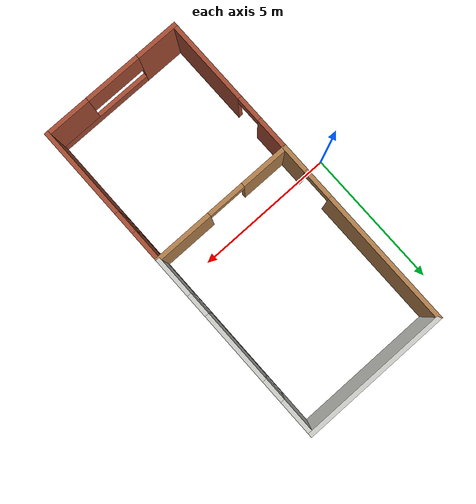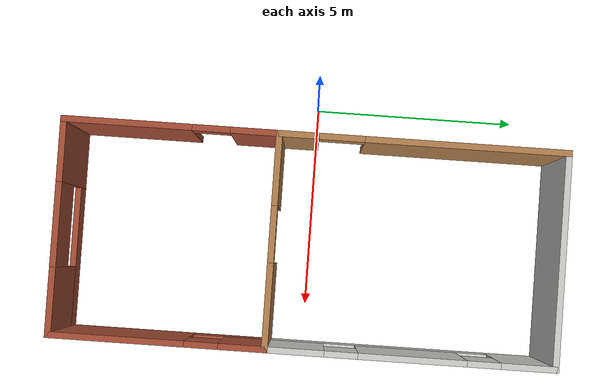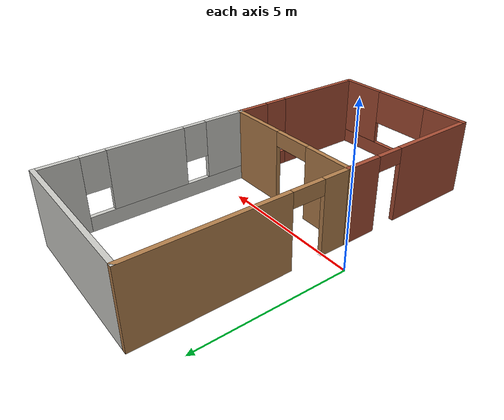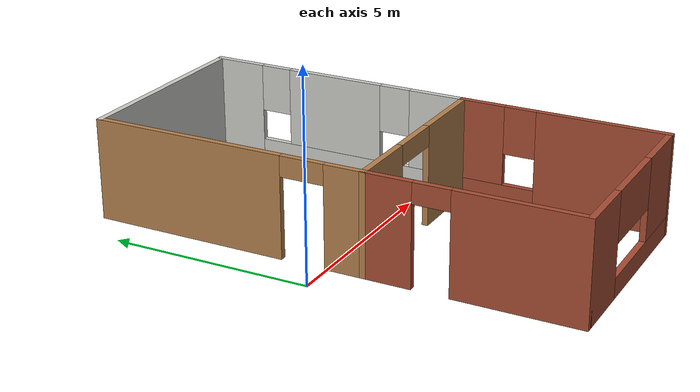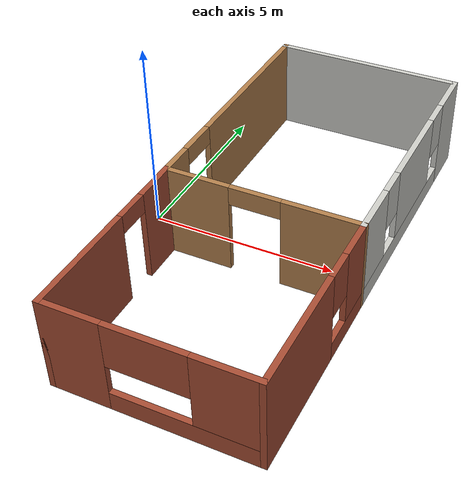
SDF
<sdf version="1.7">
 <model name="basic_house_model">
  <link name="Wall_19">
   <pose>0.95 -3.425 0 0 0 -1.5708</pose>
   <visual name="Wall_19_Visual_0">
    <pose>-2.00386 0 1.25 0 -0 0</pose>
    <geometry><box><size>1.24228 0.15 2.5</size></box></geometry>
    <material>
     <script><uri>file://media/materials/scripts/gazebo.material</uri><name>Gazebo/Bricks</name></script>
     <ambient>1 1 1 1</ambient>
     <shader type="pixel"/>
    </material>
    <meta><layer>0</layer></meta>
   </visual>
   <visual name="Wall_19_Visual_1">
    <pose>1.07114 0 1.25 0 -0 0</pose>
    <geometry><box><size>3.10772 0.15 2.5</size></box></geometry>
    <material>
     <script><uri>file://media/materials/scripts/gazebo.material</uri><name>Gazebo/Bricks</name></script>
     <ambient>1 1 1 1</ambient>
     <shader type="pixel"/>
    </material>
    <meta><layer>0</layer></meta>
   </visual>
   <visual name="Wall_19_Visual_2">
    <pose>-0.932718 0 2.25 0 -0 0</pose>
    <geometry><box><size>0.9 0.15 0.5</size></box></geometry>
    <material>
     <script><uri>file://media/materials/scripts/gazebo.material</uri><name>Gazebo/Bricks</name></script>
     <ambient>1 1 1 1</ambient>
     <shader type="pixel"/>
    </material>
    <meta><layer>0</layer></meta>
   </visual>
   <collision name="Wall_19_Collision_0">
    <pose>-2.00386 0 1.25 0 -0 0</pose>
    <geometry><box><size>1.24228 0.15 2.5</size></box></geometry>
    <surface>
     <friction>
      <ode><mu>1</mu><mu2>1</mu2><fdir1>0 0 0</fdir1><slip1>0</slip1><slip2>0</slip2></ode>
      <torsional>
       <coefficient>1</coefficient>
       <patch_radius>0</patch_radius>
       <surface_radius>0</surface_radius>
       <use_patch_radius>1</use_patch_radius>
       <ode><slip>0</slip></ode>
      </torsional>
     </friction>
     <bounce><restitution_coefficient>0</restitution_coefficient><threshold>1e+06</threshold></bounce>
     <contact>
      <collide_without_contact>0</collide_without_contact>
      <collide_without_contact_bitmask>1</collide_without_contact_bitmask>
      <collide_bitmask>1</collide_bitmask>
      <ode>
       <soft_cfm>0</soft_cfm>
       <soft_erp>0.2</soft_erp>
       <kp>1e+13</kp>
       <kd>1</kd>
       <max_vel>0.01</max_vel>
       <min_depth>0</min_depth>
      </ode>
      <bullet>
       <split_impulse>1</split_impulse>
       <split_impulse_penetration_threshold>-0.01</split_impulse_penetration_threshold>
       <soft_cfm>0</soft_cfm>
       <soft_erp>0.2</soft_erp>
       <kp>1e+13</kp>
       <kd>1</kd>
      </bullet>
     </contact>
    </surface>
   </collision>
   <collision name="Wall_19_Collision_1">
    <pose>1.07114 0 1.25 0 -0 0</pose>
    <geometry><box><size>3.10772 0.15 2.5</size></box></geometry>
    <surface>
     <friction>
      <ode><mu>1</mu><mu2>1</mu2><fdir1>0 0 0</fdir1><slip1>0</slip1><slip2>0</slip2></ode>
      <torsional>
       <coefficient>1</coefficient>
       <patch_radius>0</patch_radius>
       <surface_radius>0</surface_radius>
       <use_patch_radius>1</use_patch_radius>
       <ode><slip>0</slip></ode>
      </torsional>
     </friction>
     <bounce><restitution_coefficient>0</restitution_coefficient><threshold>1e+06</threshold></bounce>
     <contact>
      <collide_without_contact>0</collide_without_contact>
      <collide_without_contact_bitmask>1</collide_without_contact_bitmask>
      <collide_bitmask>1</collide_bitmask>
      <ode>
       <soft_cfm>0</soft_cfm>
       <soft_erp>0.2</soft_erp>
       <kp>1e+13</kp>
       <kd>1</kd>
       <max_vel>0.01</max_vel>
       <min_depth>0</min_depth>
      </ode>
      <bullet>
       <split_impulse>1</split_impulse>
       <split_impulse_penetration_threshold>-0.01</split_impulse_penetration_threshold>
       <soft_cfm>0</soft_cfm>
       <soft_erp>0.2</soft_erp>
       <kp>1e+13</kp>
       <kd>1</kd>
      </bullet>
     </contact>
    </surface>
   </collision>
   <collision name="Wall_19_Collision_2">
    <pose>-0.932718 0 2.25 0 -0 0</pose>
    <geometry><box><size>0.9 0.15 0.5</size></box></geometry>
    <surface>
     <friction>
      <ode><mu>1</mu><mu2>1</mu2><fdir1>0 0 0</fdir1><slip1>0</slip1><slip2>0</slip2></ode>
      <torsional>
       <coefficient>1</coefficient>
       <patch_radius>0</patch_radius>
       <surface_radius>0</surface_radius>
       <use_patch_radius>1</use_patch_radius>
       <ode><slip>0</slip></ode>
      </torsional>
     </friction>
     <bounce><restitution_coefficient>0</restitution_coefficient><threshold>1e+06</threshold></bounce>
     <contact>
      <collide_without_contact>0</collide_without_contact>
      <collide_without_contact_bitmask>1</collide_without_contact_bitmask>
      <collide_bitmask>1</collide_bitmask>
      <ode>
       <soft_cfm>0</soft_cfm>
       <soft_erp>0.2</soft_erp>
       <kp>1e+13</kp>
       <kd>1</kd>
       <max_vel>0.01</max_vel>
       <min_depth>0</min_depth>
      </ode>
      <bullet>
       <split_impulse>1</split_impulse>
       <split_impulse_penetration_threshold>-0.01</split_impulse_penetration_threshold>
       <soft_cfm>0</soft_cfm>
       <soft_erp>0.2</soft_erp>
       <kp>1e+13</kp>
       <kd>1</kd>
      </bullet>
     </contact>
    </surface>
   </collision>
  </link>
  <link name="Wall_20">
   <pose>3.5 -5.975 0 0 -0 0</pose>
   <visual name="Wall_20_Visual_0">
    <pose>-1.83971 0 1.25 0 -0 0</pose>
    <geometry><box><size>1.57058 0.15 2.5</size></box></geometry>
    <material>
     <script><uri>file://media/materials/scripts/gazebo.material</uri><name>Gazebo/Bricks</name></script>
     <ambient>1 1 1 1</ambient>
     <shader type="pixel"/>
    </material>
    <meta><layer>0</layer></meta>
   </visual>
   <visual name="Wall_20_Visual_1">
    <pose>0.785288 0 0.25 0 -0 0</pose>
    <geometry><box><size>3.67943 0.15 0.5</size></box></geometry>
    <material>
     <script><uri>file://media/materials/scripts/gazebo.material</uri><name>Gazebo/Bricks</name></script>
     <ambient>1 1 1 1</ambient>
     <shader type="pixel"/>
    </material>
    <meta><layer>0</layer></meta>
   </visual>
   <visual name="Wall_20_Visual_2">
    <pose>1.79171 0 1.5 0 -0 0</pose>
    <geometry><box><size>1.66657 0.15 2</size></box></geometry>
    <material>
     <script><uri>file://media/materials/scripts/gazebo.material</uri><name>Gazebo/Bricks</name></script>
     <ambient>1 1 1 1</ambient>
     <shader type="pixel"/>
    </material>
    <meta><layer>0</layer></meta>
   </visual>
   <visual name="Wall_20_Visual_3">
    <pose>-0.047998 0 1.9 0 -0 0</pose>
    <geometry><box><size>2.01285 0.15 1.2</size></box></geometry>
    <material>
     <script><uri>file://media/materials/scripts/gazebo.material</uri><name>Gazebo/Bricks</name></script>
     <ambient>1 1 1 1</ambient>
     <shader type="pixel"/>
    </material>
    <meta><layer>0</layer></meta>
   </visual>
   <collision name="Wall_20_Collision_0">
    <pose>-1.83971 0 1.25 0 -0 0</pose>
    <geometry><box><size>1.57058 0.15 2.5</size></box></geometry>
    <surface>
     <friction>
      <ode><mu>1</mu><mu2>1</mu2><fdir1>0 0 0</fdir1><slip1>0</slip1><slip2>0</slip2></ode>
      <torsional>
       <coefficient>1</coefficient>
       <patch_radius>0</patch_radius>
       <surface_radius>0</surface_radius>
       <use_patch_radius>1</use_patch_radius>
       <ode><slip>0</slip></ode>
      </torsional>
     </friction>
     <bounce><restitution_coefficient>0</restitution_coefficient><threshold>1e+06</threshold></bounce>
     <contact>
      <collide_without_contact>0</collide_without_contact>
      <collide_without_contact_bitmask>1</collide_without_contact_bitmask>
      <collide_bitmask>1</collide_bitmask>
      <ode>
       <soft_cfm>0</soft_cfm>
       <soft_erp>0.2</soft_erp>
       <kp>1e+13</kp>
       <kd>1</kd>
       <max_vel>0.01</max_vel>
       <min_depth>0</min_depth>
      </ode>
      <bullet>
       <split_impulse>1</split_impulse>
       <split_impulse_penetration_threshold>-0.01</split_impulse_penetration_threshold>
       <soft_cfm>0</soft_cfm>
       <soft_erp>0.2</soft_erp>
       <kp>1e+13</kp>
       <kd>1</kd>
      </bullet>
     </contact>
    </surface>
   </collision>
   <collision name="Wall_20_Collision_2">
    <pose>1.79171 0 1.5 0 -0 0</pose>
    <geometry><box><size>1.66657 0.15 2</size></box></geometry>
    <surface>
     <friction>
      <ode><mu>1</mu><mu2>1</mu2><fdir1>0 0 0</fdir1><slip1>0</slip1><slip2>0</slip2></ode>
      <torsional>
       <coefficient>1</coefficient>
       <patch_radius>0</patch_radius>
       <surface_radius>0</surface_radius>
       <use_patch_radius>1</use_patch_radius>
       <ode><slip>0</slip></ode>
      </torsional>
     </friction>
     <bounce><restitution_coefficient>0</restitution_coefficient><threshold>1e+06</threshold></bounce>
     <contact>
      <collide_without_contact>0</collide_without_contact>
      <collide_without_contact_bitmask>1</collide_without_contact_bitmask>
      <collide_bitmask>1</collide_bitmask>
      <ode>
       <soft_cfm>0</soft_cfm>
       <soft_erp>0.2</soft_erp>
       <kp>1e+13</kp>
       <kd>1</kd>
       <max_vel>0.01</max_vel>
       <min_depth>0</min_depth>
      </ode>
      <bullet>
       <split_impulse>1</split_impulse>
       <split_impulse_penetration_threshold>-0.01</split_impulse_penetration_threshold>
       <soft_cfm>0</soft_cfm>
       <soft_erp>0.2</soft_erp>
       <kp>1e+13</kp>
       <kd>1</kd>
      </bullet>
     </contact>
    </surface>
   </collision>
   <collision name="Wall_20_Collision_1">
    <pose>0.785288 0 0.25 0 -0 0</pose>
    <geometry><box><size>3.67943 0.15 0.5</size></box></geometry>
    <surface>
     <friction>
      <ode><mu>1</mu><mu2>1</mu2><fdir1>0 0 0</fdir1><slip1>0</slip1><slip2>0</slip2></ode>
      <torsional>
       <coefficient>1</coefficient>
       <patch_radius>0</patch_radius>
       <surface_radius>0</surface_radius>
       <use_patch_radius>1</use_patch_radius>
       <ode><slip>0</slip></ode>
      </torsional>
     </friction>
     <bounce><restitution_coefficient>0</restitution_coefficient><threshold>1e+06</threshold></bounce>
     <contact>
      <collide_without_contact>0</collide_without_contact>
      <collide_without_contact_bitmask>1</collide_without_contact_bitmask>
      <collide_bitmask>1</collide_bitmask>
      <ode>
       <soft_cfm>0</soft_cfm>
       <soft_erp>0.2</soft_erp>
       <kp>1e+13</kp>
       <kd>1</kd>
       <max_vel>0.01</max_vel>
       <min_depth>0</min_depth>
      </ode>
      <bullet>
       <split_impulse>1</split_impulse>
       <split_impulse_penetration_threshold>-0.01</split_impulse_penetration_threshold>
       <soft_cfm>0</soft_cfm>
       <soft_erp>0.2</soft_erp>
       <kp>1e+13</kp>
       <kd>1</kd>
      </bullet>
     </contact>
    </surface>
   </collision>
   <collision name="Wall_20_Collision_3">
    <pose>-0.047998 0 1.9 0 -0 0</pose>
    <geometry><box><size>2.01285 0.15 1.2</size></box></geometry>
    <surface>
     <friction>
      <ode><mu>1</mu><mu2>1</mu2><fdir1>0 0 0</fdir1><slip1>0</slip1><slip2>0</slip2></ode>
      <torsional>
       <coefficient>1</coefficient>
       <patch_radius>0</patch_radius>
       <surface_radius>0</surface_radius>
       <use_patch_radius>1</use_patch_radius>
       <ode><slip>0</slip></ode>
      </torsional>
     </friction>
     <bounce><restitution_coefficient>0</restitution_coefficient><threshold>1e+06</threshold></bounce>
     <contact>
      <collide_without_contact>0</collide_without_contact>
      <collide_without_contact_bitmask>1</collide_without_contact_bitmask>
      <collide_bitmask>1</collide_bitmask>
      <ode>
       <soft_cfm>0</soft_cfm>
       <soft_erp>0.2</soft_erp>
       <kp>1e+13</kp>
       <kd>1</kd>
       <max_vel>0.01</max_vel>
       <min_depth>0</min_depth>
      </ode>
      <bullet>
       <split_impulse>1</split_impulse>
       <split_impulse_penetration_threshold>-0.01</split_impulse_penetration_threshold>
       <soft_cfm>0</soft_cfm>
       <soft_erp>0.2</soft_erp>
       <kp>1e+13</kp>
       <kd>1</kd>
      </bullet>
     </contact>
    </surface>
   </collision>
  </link>
  <link name="Wall_21">
   <pose>6.05 -3.425 0 0 -0 1.5708</pose>
   <visual name="Wall_21_Visual_0">
    <pose>-0.987562 0 1.25 0 -0 0</pose>
    <geometry><box><size>3.27488 0.15 2.5</size></box></geometry>
    <material>
     <script><uri>file://media/materials/scripts/gazebo.material</uri><name>Gazebo/Bricks</name></script>
     <ambient>1 1 1 1</ambient>
     <shader type="pixel"/>
    </material>
    <meta><layer>0</layer></meta>
   </visual>
   <visual name="Wall_21_Visual_1">
    <pose>1.63744 0 0.25 0 -0 0</pose>
    <geometry><box><size>1.97512 0.15 0.5</size></box></geometry>
    <material>
     <script><uri>file://media/materials/scripts/gazebo.material</uri><name>Gazebo/Bricks</name></script>
     <ambient>1 1 1 1</ambient>
     <shader type="pixel"/>
    </material>
    <meta><layer>0</layer></meta>
   </visual>
   <visual name="Wall_21_Visual_2">
    <pose>2.03744 0 1.5 0 -0 0</pose>
    <geometry><box><size>1.17512 0.15 2</size></box></geometry>
    <material>
     <script><uri>file://media/materials/scripts/gazebo.material</uri><name>Gazebo/Bricks</name></script>
     <ambient>1 1 1 1</ambient>
     <shader type="pixel"/>
    </material>
    <meta><layer>0</layer></meta>
   </visual>
   <visual name="Wall_21_Visual_3">
    <pose>1.04988 0 1.9 0 -0 0</pose>
    <geometry><box><size>0.8 0.15 1.2</size></box></geometry>
    <material>
     <script><uri>file://media/materials/scripts/gazebo.material</uri><name>Gazebo/Bricks</name></script>
     <ambient>1 1 1 1</ambient>
     <shader type="pixel"/>
    </material>
    <meta><layer>0</layer></meta>
   </visual>
   <collision name="Wall_21_Collision_3">
    <pose>1.04988 0 1.9 0 -0 0</pose>
    <geometry><box><size>0.8 0.15 1.2</size></box></geometry>
    <surface>
     <friction>
      <ode><mu>1</mu><mu2>1</mu2><fdir1>0 0 0</fdir1><slip1>0</slip1><slip2>0</slip2></ode>
      <torsional>
       <coefficient>1</coefficient>
       <patch_radius>0</patch_radius>
       <surface_radius>0</surface_radius>
       <use_patch_radius>1</use_patch_radius>
       <ode><slip>0</slip></ode>
      </torsional>
     </friction>
     <bounce><restitution_coefficient>0</restitution_coefficient><threshold>1e+06</threshold></bounce>
     <contact>
      <collide_without_contact>0</collide_without_contact>
      <collide_without_contact_bitmask>1</collide_without_contact_bitmask>
      <collide_bitmask>1</collide_bitmask>
      <ode>
       <soft_cfm>0</soft_cfm>
       <soft_erp>0.2</soft_erp>
       <kp>1e+13</kp>
       <kd>1</kd>
       <max_vel>0.01</max_vel>
       <min_depth>0</min_depth>
      </ode>
      <bullet>
       <split_impulse>1</split_impulse>
       <split_impulse_penetration_threshold>-0.01</split_impulse_penetration_threshold>
       <soft_cfm>0</soft_cfm>
       <soft_erp>0.2</soft_erp>
       <kp>1e+13</kp>
       <kd>1</kd>
      </bullet>
     </contact>
    </surface>
   </collision>
   <collision name="Wall_21_Collision_0">
    <pose>-0.987562 0 1.25 0 -0 0</pose>
    <geometry><box><size>3.27488 0.15 2.5</size></box></geometry>
    <surface>
     <friction>
      <ode><mu>1</mu><mu2>1</mu2><fdir1>0 0 0</fdir1><slip1>0</slip1><slip2>0</slip2></ode>
      <torsional>
       <coefficient>1</coefficient>
       <patch_radius>0</patch_radius>
       <surface_radius>0</surface_radius>
       <use_patch_radius>1</use_patch_radius>
       <ode><slip>0</slip></ode>
      </torsional>
     </friction>
     <bounce><restitution_coefficient>0</restitution_coefficient><threshold>1e+06</threshold></bounce>
     <contact>
      <collide_without_contact>0</collide_without_contact>
      <collide_without_contact_bitmask>1</collide_without_contact_bitmask>
      <collide_bitmask>1</collide_bitmask>
      <ode>
       <soft_cfm>0</soft_cfm>
       <soft_erp>0.2</soft_erp>
       <kp>1e+13</kp>
       <kd>1</kd>
       <max_vel>0.01</max_vel>
       <min_depth>0</min_depth>
      </ode>
      <bullet>
       <split_impulse>1</split_impulse>
       <split_impulse_penetration_threshold>-0.01</split_impulse_penetration_threshold>
       <soft_cfm>0</soft_cfm>
       <soft_erp>0.2</soft_erp>
       <kp>1e+13</kp>
       <kd>1</kd>
      </bullet>
     </contact>
    </surface>
   </collision>
   <collision name="Wall_21_Collision_1">
    <pose>1.63744 0 0.25 0 -0 0</pose>
    <geometry><box><size>1.97512 0.15 0.5</size></box></geometry>
    <surface>
     <friction>
      <ode><mu>1</mu><mu2>1</mu2><fdir1>0 0 0</fdir1><slip1>0</slip1><slip2>0</slip2></ode>
      <torsional>
       <coefficient>1</coefficient>
       <patch_radius>0</patch_radius>
       <surface_radius>0</surface_radius>
       <use_patch_radius>1</use_patch_radius>
       <ode><slip>0</slip></ode>
      </torsional>
     </friction>
     <bounce><restitution_coefficient>0</restitution_coefficient><threshold>1e+06</threshold></bounce>
     <contact>
      <collide_without_contact>0</collide_without_contact>
      <collide_without_contact_bitmask>1</collide_without_contact_bitmask>
      <collide_bitmask>1</collide_bitmask>
      <ode>
       <soft_cfm>0</soft_cfm>
       <soft_erp>0.2</soft_erp>
       <kp>1e+13</kp>
       <kd>1</kd>
       <max_vel>0.01</max_vel>
       <min_depth>0</min_depth>
      </ode>
      <bullet>
       <split_impulse>1</split_impulse>
       <split_impulse_penetration_threshold>-0.01</split_impulse_penetration_threshold>
       <soft_cfm>0</soft_cfm>
       <soft_erp>0.2</soft_erp>
       <kp>1e+13</kp>
       <kd>1</kd>
      </bullet>
     </contact>
    </surface>
   </collision>
   <collision name="Wall_21_Collision_2">
    <pose>2.03744 0 1.5 0 -0 0</pose>
    <geometry><box><size>1.17512 0.15 2</size></box></geometry>
    <surface>
     <friction>
      <ode><mu>1</mu><mu2>1</mu2><fdir1>0 0 0</fdir1><slip1>0</slip1><slip2>0</slip2></ode>
      <torsional>
       <coefficient>1</coefficient>
       <patch_radius>0</patch_radius>
       <surface_radius>0</surface_radius>
       <use_patch_radius>1</use_patch_radius>
       <ode><slip>0</slip></ode>
      </torsional>
     </friction>
     <bounce><restitution_coefficient>0</restitution_coefficient><threshold>1e+06</threshold></bounce>
     <contact>
      <collide_without_contact>0</collide_without_contact>
      <collide_without_contact_bitmask>1</collide_without_contact_bitmask>
      <collide_bitmask>1</collide_bitmask>
      <ode>
       <soft_cfm>0</soft_cfm>
       <soft_erp>0.2</soft_erp>
       <kp>1e+13</kp>
       <kd>1</kd>
       <max_vel>0.01</max_vel>
       <min_depth>0</min_depth>
      </ode>
      <bullet>
       <split_impulse>1</split_impulse>
       <split_impulse_penetration_threshold>-0.01</split_impulse_penetration_threshold>
       <soft_cfm>0</soft_cfm>
       <soft_erp>0.2</soft_erp>
       <kp>1e+13</kp>
       <kd>1</kd>
      </bullet>
     </contact>
    </surface>
   </collision>
  </link>
  <link name="Wall_27">
   <pose>3.5 5.975 0 0 -0 0</pose>
   <visual name="Wall_27_Visual">
    <pose>0 0 1.25 0 -0 0</pose>
    <geometry><box><size>5.25 0.15 2.5</size></box></geometry>
    <material>
     <script><uri>file://media/materials/scripts/gazebo.material</uri><name>Gazebo/CeilingTiled</name></script>
     <ambient>1 1 1 1</ambient>
     <shader type="pixel"/>
    </material>
    <meta><layer>0</layer></meta>
   </visual>
   <collision name="Wall_27_Collision">
    <pose>0 0 1.25 0 -0 0</pose>
    <geometry><box><size>5.25 0.15 2.5</size></box></geometry>
    <surface>
     <friction>
      <ode><mu>1</mu><mu2>1</mu2><fdir1>0 0 0</fdir1><slip1>0</slip1><slip2>0</slip2></ode>
      <torsional>
       <coefficient>1</coefficient>
       <patch_radius>0</patch_radius>
       <surface_radius>0</surface_radius>
       <use_patch_radius>1</use_patch_radius>
       <ode><slip>0</slip></ode>
      </torsional>
     </friction>
     <bounce><restitution_coefficient>0</restitution_coefficient><threshold>1e+06</threshold></bounce>
     <contact>
      <collide_without_contact>0</collide_without_contact>
      <collide_without_contact_bitmask>1</collide_without_contact_bitmask>
      <collide_bitmask>1</collide_bitmask>
      <ode>
       <soft_cfm>0</soft_cfm>
       <soft_erp>0.2</soft_erp>
       <kp>1e+13</kp>
       <kd>1</kd>
       <max_vel>0.01</max_vel>
       <min_depth>0</min_depth>
      </ode>
      <bullet>
       <split_impulse>1</split_impulse>
       <split_impulse_penetration_threshold>-0.01</split_impulse_penetration_threshold>
       <soft_cfm>0</soft_cfm>
       <soft_erp>0.2</soft_erp>
       <kp>1e+13</kp>
       <kd>1</kd>
      </bullet>
     </contact>
    </surface>
   </collision>
  </link>
  <link name="Wall_6">
   <pose>6.05 2.55 0 0 0 -1.5708</pose>
   <visual name="Wall_6_Visual_0">
    <pose>-2.82309 0 1.25 0 -0 0</pose>
    <geometry><box><size>1.35381 0.15 2.5</size></box></geometry>
    <material>
     <script><uri>file://media/materials/scripts/gazebo.material</uri><name>Gazebo/CeilingTiled</name></script>
     <ambient>1 1 1 1</ambient>
     <shader type="pixel"/>
    </material>
    <meta><layer>0</layer></meta>
   </visual>
   <visual name="Wall_6_Visual_1">
    <pose>0.676907 0 0.25 0 -0 0</pose>
    <geometry><box><size>5.64619 0.15 0.5</size></box></geometry>
    <material>
     <script><uri>file://media/materials/scripts/gazebo.material</uri><name>Gazebo/CeilingTiled</name></script>
     <ambient>1 1 1 1</ambient>
     <shader type="pixel"/>
    </material>
    <meta><layer>0</layer></meta>
   </visual>
   <visual name="Wall_6_Visual_2">
    <pose>-0.061529 0 1.5 0 -0 0</pose>
    <geometry><box><size>2.56931 0.15 2</size></box></geometry>
    <material>
     <script><uri>file://media/materials/scripts/gazebo.material</uri><name>Gazebo/CeilingTiled</name></script>
     <ambient>1 1 1 1</ambient>
     <shader type="pixel"/>
    </material>
    <meta><layer>0</layer></meta>
   </visual>
   <visual name="Wall_6_Visual_3">
    <pose>2.76156 0 1.5 0 -0 0</pose>
    <geometry><box><size>1.47687 0.15 2</size></box></geometry>
    <material>
     <script><uri>file://media/materials/scripts/gazebo.material</uri><name>Gazebo/CeilingTiled</name></script>
     <ambient>1 1 1 1</ambient>
     <shader type="pixel"/>
    </material>
    <meta><layer>0</layer></meta>
   </visual>
   <visual name="Wall_6_Visual_4">
    <pose>-1.74619 0 1.9 0 -0 0</pose>
    <geometry><box><size>0.8 0.15 1.2</size></box></geometry>
    <material>
     <script><uri>file://media/materials/scripts/gazebo.material</uri><name>Gazebo/CeilingTiled</name></script>
     <ambient>1 1 1 1</ambient>
     <shader type="pixel"/>
    </material>
    <meta><layer>0</layer></meta>
   </visual>
   <visual name="Wall_6_Visual_5">
    <pose>1.62313 0 1.9 0 -0 0</pose>
    <geometry><box><size>0.8 0.15 1.2</size></box></geometry>
    <material>
     <script><uri>file://media/materials/scripts/gazebo.material</uri><name>Gazebo/CeilingTiled</name></script>
     <ambient>1 1 1 1</ambient>
     <shader type="pixel"/>
    </material>
    <meta><layer>0</layer></meta>
   </visual>
   <collision name="Wall_6_Collision_0">
    <pose>-2.82309 0 1.25 0 -0 0</pose>
    <geometry><box><size>1.35381 0.15 2.5</size></box></geometry>
    <surface>
     <friction>
      <ode><mu>1</mu><mu2>1</mu2><fdir1>0 0 0</fdir1><slip1>0</slip1><slip2>0</slip2></ode>
      <torsional>
       <coefficient>1</coefficient>
       <patch_radius>0</patch_radius>
       <surface_radius>0</surface_radius>
       <use_patch_radius>1</use_patch_radius>
       <ode><slip>0</slip></ode>
      </torsional>
     </friction>
     <bounce><restitution_coefficient>0</restitution_coefficient><threshold>1e+06</threshold></bounce>
     <contact>
      <collide_without_contact>0</collide_without_contact>
      <collide_without_contact_bitmask>1</collide_without_contact_bitmask>
      <collide_bitmask>1</collide_bitmask>
      <ode>
       <soft_cfm>0</soft_cfm>
       <soft_erp>0.2</soft_erp>
       <kp>1e+13</kp>
       <kd>1</kd>
       <max_vel>0.01</max_vel>
       <min_depth>0</min_depth>
      </ode>
      <bullet>
       <split_impulse>1</split_impulse>
       <split_impulse_penetration_threshold>-0.01</split_impulse_penetration_threshold>
       <soft_cfm>0</soft_cfm>
       <soft_erp>0.2</soft_erp>
       <kp>1e+13</kp>
       <kd>1</kd>
      </bullet>
     </contact>
    </surface>
   </collision>
   <collision name="Wall_6_Collision_1">
    <pose>0.676907 0 0.25 0 -0 0</pose>
    <geometry><box><size>5.64619 0.15 0.5</size></box></geometry>
    <surface>
     <friction>
      <ode><mu>1</mu><mu2>1</mu2><fdir1>0 0 0</fdir1><slip1>0</slip1><slip2>0</slip2></ode>
      <torsional>
       <coefficient>1</coefficient>
       <patch_radius>0</patch_radius>
       <surface_radius>0</surface_radius>
       <use_patch_radius>1</use_patch_radius>
       <ode><slip>0</slip></ode>
      </torsional>
     </friction>
     <bounce><restitution_coefficient>0</restitution_coefficient><threshold>1e+06</threshold></bounce>
     <contact>
      <collide_without_contact>0</collide_without_contact>
      <collide_without_contact_bitmask>1</collide_without_contact_bitmask>
      <collide_bitmask>1</collide_bitmask>
      <ode>
       <soft_cfm>0</soft_cfm>
       <soft_erp>0.2</soft_erp>
       <kp>1e+13</kp>
       <kd>1</kd>
       <max_vel>0.01</max_vel>
       <min_depth>0</min_depth>
      </ode>
      <bullet>
       <split_impulse>1</split_impulse>
       <split_impulse_penetration_threshold>-0.01</split_impulse_penetration_threshold>
       <soft_cfm>0</soft_cfm>
       <soft_erp>0.2</soft_erp>
       <kp>1e+13</kp>
       <kd>1</kd>
      </bullet>
     </contact>
    </surface>
   </collision>
   <collision name="Wall_6_Collision_2">
    <pose>-0.061529 0 1.5 0 -0 0</pose>
    <geometry><box><size>2.56931 0.15 2</size></box></geometry>
    <surface>
     <friction>
      <ode><mu>1</mu><mu2>1</mu2><fdir1>0 0 0</fdir1><slip1>0</slip1><slip2>0</slip2></ode>
      <torsional>
       <coefficient>1</coefficient>
       <patch_radius>0</patch_radius>
       <surface_radius>0</surface_radius>
       <use_patch_radius>1</use_patch_radius>
       <ode><slip>0</slip></ode>
      </torsional>
     </friction>
     <bounce><restitution_coefficient>0</restitution_coefficient><threshold>1e+06</threshold></bounce>
     <contact>
      <collide_without_contact>0</collide_without_contact>
      <collide_without_contact_bitmask>1</collide_without_contact_bitmask>
      <collide_bitmask>1</collide_bitmask>
      <ode>
       <soft_cfm>0</soft_cfm>
       <soft_erp>0.2</soft_erp>
       <kp>1e+13</kp>
       <kd>1</kd>
       <max_vel>0.01</max_vel>
       <min_depth>0</min_depth>
      </ode>
      <bullet>
       <split_impulse>1</split_impulse>
       <split_impulse_penetration_threshold>-0.01</split_impulse_penetration_threshold>
       <soft_cfm>0</soft_cfm>
       <soft_erp>0.2</soft_erp>
       <kp>1e+13</kp>
       <kd>1</kd>
      </bullet>
     </contact>
    </surface>
   </collision>
   <collision name="Wall_6_Collision_4">
    <pose>-1.74619 0 1.9 0 -0 0</pose>
    <geometry><box><size>0.8 0.15 1.2</size></box></geometry>
    <surface>
     <friction>
      <ode><mu>1</mu><mu2>1</mu2><fdir1>0 0 0</fdir1><slip1>0</slip1><slip2>0</slip2></ode>
      <torsional>
       <coefficient>1</coefficient>
       <patch_radius>0</patch_radius>
       <surface_radius>0</surface_radius>
       <use_patch_radius>1</use_patch_radius>
       <ode><slip>0</slip></ode>
      </torsional>
     </friction>
     <bounce><restitution_coefficient>0</restitution_coefficient><threshold>1e+06</threshold></bounce>
     <contact>
      <collide_without_contact>0</collide_without_contact>
      <collide_without_contact_bitmask>1</collide_without_contact_bitmask>
      <collide_bitmask>1</collide_bitmask>
      <ode>
       <soft_cfm>0</soft_cfm>
       <soft_erp>0.2</soft_erp>
       <kp>1e+13</kp>
       <kd>1</kd>
       <max_vel>0.01</max_vel>
       <min_depth>0</min_depth>
      </ode>
      <bullet>
       <split_impulse>1</split_impulse>
       <split_impulse_penetration_threshold>-0.01</split_impulse_penetration_threshold>
       <soft_cfm>0</soft_cfm>
       <soft_erp>0.2</soft_erp>
       <kp>1e+13</kp>
       <kd>1</kd>
      </bullet>
     </contact>
    </surface>
   </collision>
   <collision name="Wall_6_Collision_3">
    <pose>2.76156 0 1.5 0 -0 0</pose>
    <geometry><box><size>1.47687 0.15 2</size></box></geometry>
    <surface>
     <friction>
      <ode><mu>1</mu><mu2>1</mu2><fdir1>0 0 0</fdir1><slip1>0</slip1><slip2>0</slip2></ode>
      <torsional>
       <coefficient>1</coefficient>
       <patch_radius>0</patch_radius>
       <surface_radius>0</surface_radius>
       <use_patch_radius>1</use_patch_radius>
       <ode><slip>0</slip></ode>
      </torsional>
     </friction>
     <bounce><restitution_coefficient>0</restitution_coefficient><threshold>1e+06</threshold></bounce>
     <contact>
      <collide_without_contact>0</collide_without_contact>
      <collide_without_contact_bitmask>1</collide_without_contact_bitmask>
      <collide_bitmask>1</collide_bitmask>
      <ode>
       <soft_cfm>0</soft_cfm>
       <soft_erp>0.2</soft_erp>
       <kp>1e+13</kp>
       <kd>1</kd>
       <max_vel>0.01</max_vel>
       <min_depth>0</min_depth>
      </ode>
      <bullet>
       <split_impulse>1</split_impulse>
       <split_impulse_penetration_threshold>-0.01</split_impulse_penetration_threshold>
       <soft_cfm>0</soft_cfm>
       <soft_erp>0.2</soft_erp>
       <kp>1e+13</kp>
       <kd>1</kd>
      </bullet>
     </contact>
    </surface>
   </collision>
   <collision name="Wall_6_Collision_5">
    <pose>1.62313 0 1.9 0 -0 0</pose>
    <geometry><box><size>0.8 0.15 1.2</size></box></geometry>
    <surface>
     <friction>
      <ode><mu>1</mu><mu2>1</mu2><fdir1>0 0 0</fdir1><slip1>0</slip1><slip2>0</slip2></ode>
      <torsional>
       <coefficient>1</coefficient>
       <patch_radius>0</patch_radius>
       <surface_radius>0</surface_radius>
       <use_patch_radius>1</use_patch_radius>
       <ode><slip>0</slip></ode>
      </torsional>
     </friction>
     <bounce><restitution_coefficient>0</restitution_coefficient><threshold>1e+06</threshold></bounce>
     <contact>
      <collide_without_contact>0</collide_without_contact>
      <collide_without_contact_bitmask>1</collide_without_contact_bitmask>
      <collide_bitmask>1</collide_bitmask>
      <ode>
       <soft_cfm>0</soft_cfm>
       <soft_erp>0.2</soft_erp>
       <kp>1e+13</kp>
       <kd>1</kd>
       <max_vel>0.01</max_vel>
       <min_depth>0</min_depth>
      </ode>
      <bullet>
       <split_impulse>1</split_impulse>
       <split_impulse_penetration_threshold>-0.01</split_impulse_penetration_threshold>
       <soft_cfm>0</soft_cfm>
       <soft_erp>0.2</soft_erp>
       <kp>1e+13</kp>
       <kd>1</kd>
      </bullet>
     </contact>
    </surface>
   </collision>
  </link>
  <link name="Wall_7">
   <pose>3.5 -0.875 0 0 -0 3.14159</pose>
   <visual name="Wall_7_Visual_0">
    <pose>-1.56742 0 1.25 0 -0 0</pose>
    <geometry><box><size>2.11515 0.15 2.5</size></box></geometry>
    <material>
     <script><uri>file://media/materials/scripts/gazebo.material</uri><name>Gazebo/Wood</name></script>
     <ambient>1 1 1 1</ambient>
     <shader type="pixel"/>
    </material>
    <meta><layer>0</layer></meta>
   </visual>
   <visual name="Wall_7_Visual_1">
    <pose>1.73186 0 1.25 0 -0 0</pose>
    <geometry><box><size>1.78627 0.15 2.5</size></box></geometry>
    <material>
     <script><uri>file://media/materials/scripts/gazebo.material</uri><name>Gazebo/Wood</name></script>
     <ambient>1 1 1 1</ambient>
     <shader type="pixel"/>
    </material>
    <meta><layer>0</layer></meta>
   </visual>
   <visual name="Wall_7_Visual_2">
    <pose>0.16444 0 2.25 0 -0 0</pose>
    <geometry><box><size>1.34858 0.15 0.5</size></box></geometry>
    <material>
     <script><uri>file://media/materials/scripts/gazebo.material</uri><name>Gazebo/Wood</name></script>
     <ambient>1 1 1 1</ambient>
     <shader type="pixel"/>
    </material>
    <meta><layer>0</layer></meta>
   </visual>
   <collision name="Wall_7_Collision_0">
    <pose>-1.56742 0 1.25 0 -0 0</pose>
    <geometry><box><size>2.11515 0.15 2.5</size></box></geometry>
    <surface>
     <friction>
      <ode><mu>1</mu><mu2>1</mu2><fdir1>0 0 0</fdir1><slip1>0</slip1><slip2>0</slip2></ode>
      <torsional>
       <coefficient>1</coefficient>
       <patch_radius>0</patch_radius>
       <surface_radius>0</surface_radius>
       <use_patch_radius>1</use_patch_radius>
       <ode><slip>0</slip></ode>
      </torsional>
     </friction>
     <bounce><restitution_coefficient>0</restitution_coefficient><threshold>1e+06</threshold></bounce>
     <contact>
      <collide_without_contact>0</collide_without_contact>
      <collide_without_contact_bitmask>1</collide_without_contact_bitmask>
      <collide_bitmask>1</collide_bitmask>
      <ode>
       <soft_cfm>0</soft_cfm>
       <soft_erp>0.2</soft_erp>
       <kp>1e+13</kp>
       <kd>1</kd>
       <max_vel>0.01</max_vel>
       <min_depth>0</min_depth>
      </ode>
      <bullet>
       <split_impulse>1</split_impulse>
       <split_impulse_penetration_threshold>-0.01</split_impulse_penetration_threshold>
       <soft_cfm>0</soft_cfm>
       <soft_erp>0.2</soft_erp>
       <kp>1e+13</kp>
       <kd>1</kd>
      </bullet>
     </contact>
    </surface>
   </collision>
   <collision name="Wall_7_Collision_1">
    <pose>1.73186 0 1.25 0 -0 0</pose>
    <geometry><box><size>1.78627 0.15 2.5</size></box></geometry>
    <surface>
     <friction>
      <ode><mu>1</mu><mu2>1</mu2><fdir1>0 0 0</fdir1><slip1>0</slip1><slip2>0</slip2></ode>
      <torsional>
       <coefficient>1</coefficient>
       <patch_radius>0</patch_radius>
       <surface_radius>0</surface_radius>
       <use_patch_radius>1</use_patch_radius>
       <ode><slip>0</slip></ode>
      </torsional>
     </friction>
     <bounce><restitution_coefficient>0</restitution_coefficient><threshold>1e+06</threshold></bounce>
     <contact>
      <collide_without_contact>0</collide_without_contact>
      <collide_without_contact_bitmask>1</collide_without_contact_bitmask>
      <collide_bitmask>1</collide_bitmask>
      <ode>
       <soft_cfm>0</soft_cfm>
       <soft_erp>0.2</soft_erp>
       <kp>1e+13</kp>
       <kd>1</kd>
       <max_vel>0.01</max_vel>
       <min_depth>0</min_depth>
      </ode>
      <bullet>
       <split_impulse>1</split_impulse>
       <split_impulse_penetration_threshold>-0.01</split_impulse_penetration_threshold>
       <soft_cfm>0</soft_cfm>
       <soft_erp>0.2</soft_erp>
       <kp>1e+13</kp>
       <kd>1</kd>
      </bullet>
     </contact>
    </surface>
   </collision>
   <collision name="Wall_7_Collision_2">
    <pose>0.16444 0 2.25 0 -0 0</pose>
    <geometry><box><size>1.34858 0.15 0.5</size></box></geometry>
    <surface>
     <friction>
      <ode><mu>1</mu><mu2>1</mu2><fdir1>0 0 0</fdir1><slip1>0</slip1><slip2>0</slip2></ode>
      <torsional>
       <coefficient>1</coefficient>
       <patch_radius>0</patch_radius>
       <surface_radius>0</surface_radius>
       <use_patch_radius>1</use_patch_radius>
       <ode><slip>0</slip></ode>
      </torsional>
     </friction>
     <bounce><restitution_coefficient>0</restitution_coefficient><threshold>1e+06</threshold></bounce>
     <contact>
      <collide_without_contact>0</collide_without_contact>
      <collide_without_contact_bitmask>1</collide_without_contact_bitmask>
      <collide_bitmask>1</collide_bitmask>
      <ode>
       <soft_cfm>0</soft_cfm>
       <soft_erp>0.2</soft_erp>
       <kp>1e+13</kp>
       <kd>1</kd>
       <max_vel>0.01</max_vel>
       <min_depth>0</min_depth>
      </ode>
      <bullet>
       <split_impulse>1</split_impulse>
       <split_impulse_penetration_threshold>-0.01</split_impulse_penetration_threshold>
       <soft_cfm>0</soft_cfm>
       <soft_erp>0.2</soft_erp>
       <kp>1e+13</kp>
       <kd>1</kd>
      </bullet>
     </contact>
    </surface>
   </collision>
  </link>
  <link name="Wall_8">
   <pose>0.95 2.55 0 0 -0 1.5708</pose>
   <visual name="Wall_8_Visual_0">
    <pose>-2.99261 0 1.25 0 -0 0</pose>
    <geometry><box><size>1.01478 0.15 2.5</size></box></geometry>
    <material>
     <script><uri>file://media/materials/scripts/gazebo.material</uri><name>Gazebo/Wood</name></script>
     <ambient>1 1 1 1</ambient>
     <shader type="pixel"/>
    </material>
    <meta><layer>0</layer></meta>
   </visual>
   <visual name="Wall_8_Visual_1">
    <pose>1.05209 0 1.25 0 -0 0</pose>
    <geometry><box><size>4.89583 0.15 2.5</size></box></geometry>
    <material>
     <script><uri>file://media/materials/scripts/gazebo.material</uri><name>Gazebo/Wood</name></script>
     <ambient>1 1 1 1</ambient>
     <shader type="pixel"/>
    </material>
    <meta><layer>0</layer></meta>
   </visual>
   <visual name="Wall_8_Visual_2">
    <pose>-1.94053 0 2.25 0 -0 0</pose>
    <geometry><box><size>1.0894 0.15 0.5</size></box></geometry>
    <material>
     <script><uri>file://media/materials/scripts/gazebo.material</uri><name>Gazebo/Wood</name></script>
     <ambient>1 1 1 1</ambient>
     <shader type="pixel"/>
    </material>
    <meta><layer>0</layer></meta>
   </visual>
   <collision name="Wall_8_Collision_1">
    <pose>1.05209 0 1.25 0 -0 0</pose>
    <geometry><box><size>4.89583 0.15 2.5</size></box></geometry>
    <surface>
     <friction>
      <ode><mu>1</mu><mu2>1</mu2><fdir1>0 0 0</fdir1><slip1>0</slip1><slip2>0</slip2></ode>
      <torsional>
       <coefficient>1</coefficient>
       <patch_radius>0</patch_radius>
       <surface_radius>0</surface_radius>
       <use_patch_radius>1</use_patch_radius>
       <ode><slip>0</slip></ode>
      </torsional>
     </friction>
     <bounce><restitution_coefficient>0</restitution_coefficient><threshold>1e+06</threshold></bounce>
     <contact>
      <collide_without_contact>0</collide_without_contact>
      <collide_without_contact_bitmask>1</collide_without_contact_bitmask>
      <collide_bitmask>1</collide_bitmask>
      <ode>
       <soft_cfm>0</soft_cfm>
       <soft_erp>0.2</soft_erp>
       <kp>1e+13</kp>
       <kd>1</kd>
       <max_vel>0.01</max_vel>
       <min_depth>0</min_depth>
      </ode>
      <bullet>
       <split_impulse>1</split_impulse>
       <split_impulse_penetration_threshold>-0.01</split_impulse_penetration_threshold>
       <soft_cfm>0</soft_cfm>
       <soft_erp>0.2</soft_erp>
       <kp>1e+13</kp>
       <kd>1</kd>
      </bullet>
     </contact>
    </surface>
   </collision>
   <collision name="Wall_8_Collision_0">
    <pose>-2.99261 0 1.25 0 -0 0</pose>
    <geometry><box><size>1.01478 0.15 2.5</size></box></geometry>
    <surface>
     <friction>
      <ode><mu>1</mu><mu2>1</mu2><fdir1>0 0 0</fdir1><slip1>0</slip1><slip2>0</slip2></ode>
      <torsional>
       <coefficient>1</coefficient>
       <patch_radius>0</patch_radius>
       <surface_radius>0</surface_radius>
       <use_patch_radius>1</use_patch_radius>
       <ode><slip>0</slip></ode>
      </torsional>
     </friction>
     <bounce><restitution_coefficient>0</restitution_coefficient><threshold>1e+06</threshold></bounce>
     <contact>
      <collide_without_contact>0</collide_without_contact>
      <collide_without_contact_bitmask>1</collide_without_contact_bitmask>
      <collide_bitmask>1</collide_bitmask>
      <ode>
       <soft_cfm>0</soft_cfm>
       <soft_erp>0.2</soft_erp>
       <kp>1e+13</kp>
       <kd>1</kd>
       <max_vel>0.01</max_vel>
       <min_depth>0</min_depth>
      </ode>
      <bullet>
       <split_impulse>1</split_impulse>
       <split_impulse_penetration_threshold>-0.01</split_impulse_penetration_threshold>
       <soft_cfm>0</soft_cfm>
       <soft_erp>0.2</soft_erp>
       <kp>1e+13</kp>
       <kd>1</kd>
      </bullet>
     </contact>
    </surface>
   </collision>
   <collision name="Wall_8_Collision_2">
    <pose>-1.94053 0 2.25 0 -0 0</pose>
    <geometry><box><size>1.0894 0.15 0.5</size></box></geometry>
    <surface>
     <friction>
      <ode><mu>1</mu><mu2>1</mu2><fdir1>0 0 0</fdir1><slip1>0</slip1><slip2>0</slip2></ode>
      <torsional>
       <coefficient>1</coefficient>
       <patch_radius>0</patch_radius>
       <surface_radius>0</surface_radius>
       <use_patch_radius>1</use_patch_radius>
       <ode><slip>0</slip></ode>
      </torsional>
     </friction>
     <bounce><restitution_coefficient>0</restitution_coefficient><threshold>1e+06</threshold></bounce>
     <contact>
      <collide_without_contact>0</collide_without_contact>
      <collide_without_contact_bitmask>1</collide_without_contact_bitmask>
      <collide_bitmask>1</collide_bitmask>
      <ode>
       <soft_cfm>0</soft_cfm>
       <soft_erp>0.2</soft_erp>
       <kp>1e+13</kp>
       <kd>1</kd>
       <max_vel>0.01</max_vel>
       <min_depth>0</min_depth>
      </ode>
      <bullet>
       <split_impulse>1</split_impulse>
       <split_impulse_penetration_threshold>-0.01</split_impulse_penetration_threshold>
       <soft_cfm>0</soft_cfm>
       <soft_erp>0.2</soft_erp>
       <kp>1e+13</kp>
       <kd>1</kd>
      </bullet>
     </contact>
    </surface>
   </collision>
  </link>
  <static>1</static>
 </model>
</sdf>
